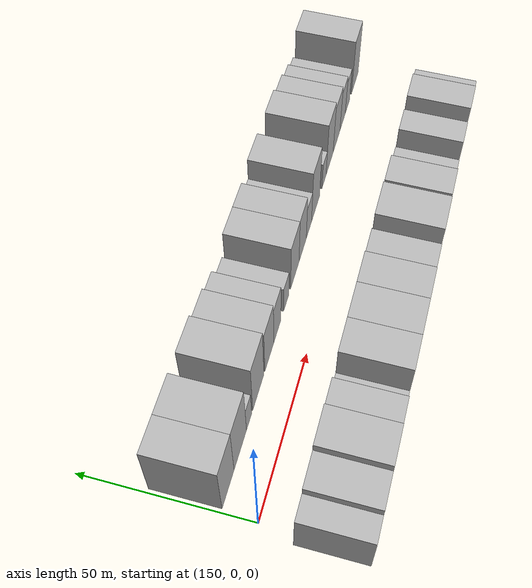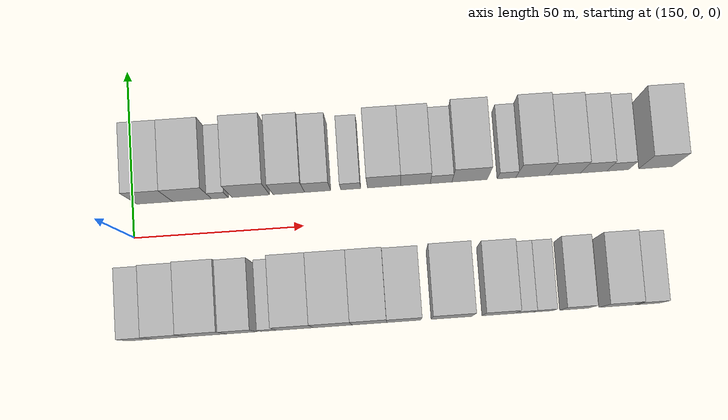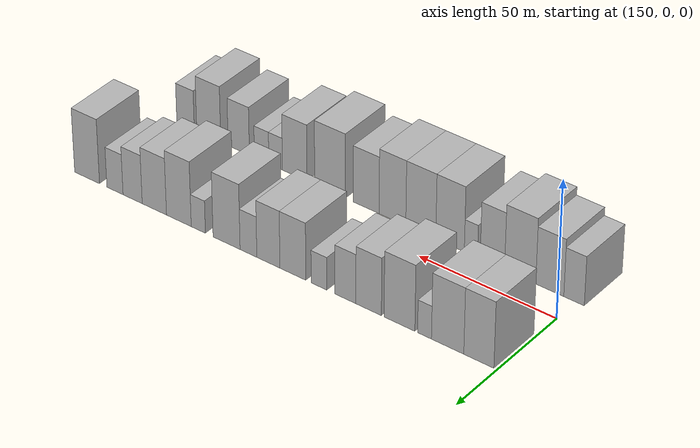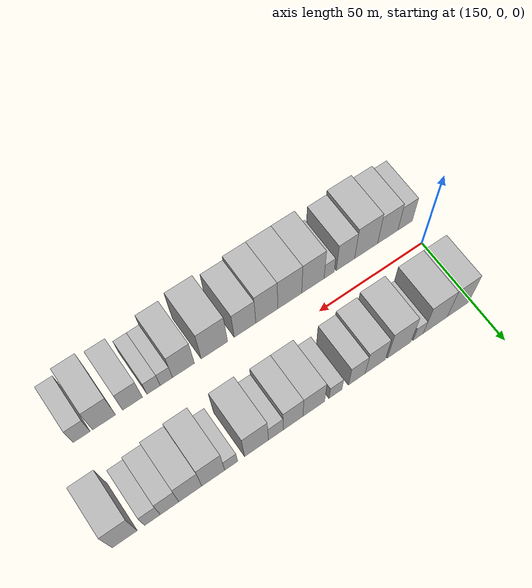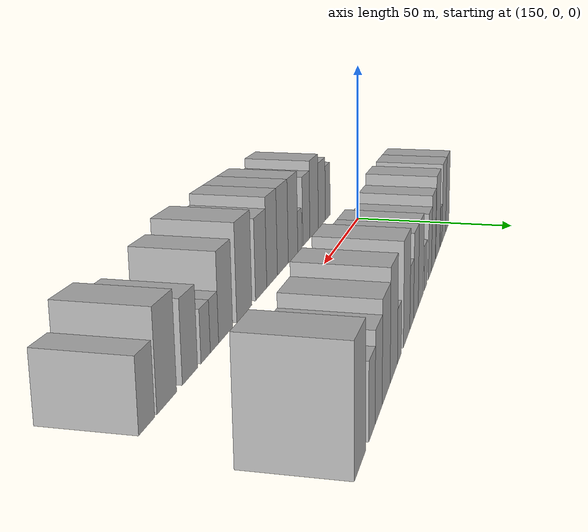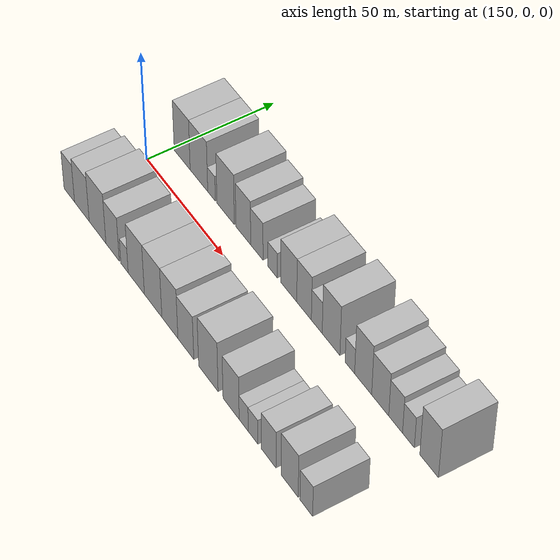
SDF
<sdf version="1.6">
 <world name="default">
  <model name="building_16">
   <static>1</static>
   <pose>156.4968 20.0000 0 0.000000 0.000000 1.570796</pose>
   <link name="link">
    <pose>0 0 12.00 0 0 0</pose>
    <collision name="collision"><geometry><box><size>20.0000 10.6446 24.0000</size></box></geometry></collision>
    <visual name="visual">
     <cast_shadows>0</cast_shadows>
     <geometry><box><size>20.0000 10.6446 24.0000</size></box></geometry>
     <material>
      <script>
       <uri>model://HANNAS_wall/materials/scripts</uri>
       <uri>model://HANNAS_wall/materials/textures</uri>
       <name>vrc/HANNAS_wall</name>
      </script>
     </material>
    </visual>
   </link>
  </model>
  <model name="building_17">
   <static>1</static>
   <pose>167.5923 20.0000 0 0.000000 0.000000 1.570796</pose>
   <link name="link">
    <pose>0 0 12.00 0 0 0</pose>
    <collision name="collision"><geometry><box><size>20.0000 11.5463 24.0000</size></box></geometry></collision>
    <visual name="visual">
     <cast_shadows>0</cast_shadows>
     <geometry><box><size>20.0000 11.5463 24.0000</size></box></geometry>
     <material>
      <script>
       <uri>model://HANNAS_wall/materials/scripts</uri>
       <uri>model://HANNAS_wall/materials/textures</uri>
       <name>vrc/HANNAS_wall</name>
      </script>
     </material>
    </visual>
   </link>
  </model>
  <model name="building_18">
   <static>1</static>
   <pose>175.8534 20.0000 0 0.000000 0.000000 1.570796</pose>
   <link name="link">
    <pose>0 0 6.00 0 0 0</pose>
    <collision name="collision"><geometry><box><size>20.0000 4.9759 12.0000</size></box></geometry></collision>
    <visual name="visual">
     <cast_shadows>0</cast_shadows>
     <geometry><box><size>20.0000 4.9759 12.0000</size></box></geometry>
     <material>
      <script>
       <uri>model://HANNAS_wall/materials/scripts</uri>
       <uri>model://HANNAS_wall/materials/textures</uri>
       <name>vrc/HANNAS_wall</name>
      </script>
     </material>
    </visual>
   </link>
  </model>
  <model name="building_19">
   <static>1</static>
   <pose>184.9343 20.0000 0 0.000000 0.000000 1.570796</pose>
   <link name="link">
    <pose>0 0 12.00 0 0 0</pose>
    <collision name="collision"><geometry><box><size>20.0000 11.1859 24.0000</size></box></geometry></collision>
    <visual name="visual">
     <cast_shadows>0</cast_shadows>
     <geometry><box><size>20.0000 11.1859 24.0000</size></box></geometry>
     <material>
      <script>
       <uri>model://HANNAS_wall/materials/scripts</uri>
       <uri>model://HANNAS_wall/materials/textures</uri>
       <name>vrc/HANNAS_wall</name>
      </script>
     </material>
    </visual>
   </link>
  </model>
  <model name="building_20">
   <static>1</static>
   <pose>196.2174 20.0000 0 0.000000 0.000000 1.570796</pose>
   <link name="link">
    <pose>0 0 10.50 0 0 0</pose>
    <collision name="collision"><geometry><box><size>20.0000 9.3804 21.0000</size></box></geometry></collision>
    <visual name="visual">
     <cast_shadows>0</cast_shadows>
     <geometry><box><size>20.0000 9.3804 21.0000</size></box></geometry>
     <material>
      <script>
       <uri>model://HANNAS_wall/materials/scripts</uri>
       <uri>model://HANNAS_wall/materials/textures</uri>
       <name>vrc/HANNAS_wall</name>
      </script>
     </material>
    </visual>
   </link>
  </model>
  <model name="building_21">
   <static>1</static>
   <pose>204.7751 20.0000 0 0.000000 0.000000 1.570796</pose>
   <link name="link">
    <pose>0 0 9.00 0 0 0</pose>
    <collision name="collision"><geometry><box><size>20.0000 7.7349 18.0000</size></box></geometry></collision>
    <visual name="visual">
     <cast_shadows>0</cast_shadows>
     <geometry><box><size>20.0000 7.7349 18.0000</size></box></geometry>
     <material>
      <script>
       <uri>model://HANNAS_wall/materials/scripts</uri>
       <uri>model://HANNAS_wall/materials/textures</uri>
       <name>vrc/HANNAS_wall</name>
      </script>
     </material>
    </visual>
   </link>
  </model>
  <model name="building_22">
   <static>1</static>
   <pose>214.5912 20.0000 0 0.000000 0.000000 1.570796</pose>
   <link name="link">
    <pose>0 0 6.00 0 0 0</pose>
    <collision name="collision"><geometry><box><size>20.0000 5.8975 12.0000</size></box></geometry></collision>
    <visual name="visual">
     <cast_shadows>0</cast_shadows>
     <geometry><box><size>20.0000 5.8975 12.0000</size></box></geometry>
     <material>
      <script>
       <uri>model://HANNAS_wall/materials/scripts</uri>
       <uri>model://HANNAS_wall/materials/textures</uri>
       <name>vrc/HANNAS_wall</name>
      </script>
     </material>
    </visual>
   </link>
  </model>
  <model name="building_23">
   <static>1</static>
   <pose>224.4419 20.0000 0 0.000000 0.000000 1.570796</pose>
   <link name="link">
    <pose>0 0 10.50 0 0 0</pose>
    <collision name="collision"><geometry><box><size>20.0000 9.8039 21.0000</size></box></geometry></collision>
    <visual name="visual">
     <cast_shadows>0</cast_shadows>
     <geometry><box><size>20.0000 9.8039 21.0000</size></box></geometry>
     <material>
      <script>
       <uri>model://HANNAS_wall/materials/scripts</uri>
       <uri>model://HANNAS_wall/materials/textures</uri>
       <name>vrc/HANNAS_wall</name>
      </script>
     </material>
    </visual>
   </link>
  </model>
  <model name="building_24">
   <static>1</static>
   <pose>233.7490 20.0000 0 0.000000 0.000000 1.570796</pose>
   <link name="link">
    <pose>0 0 10.50 0 0 0</pose>
    <collision name="collision"><geometry><box><size>20.0000 8.8103 21.0000</size></box></geometry></collision>
    <visual name="visual">
     <cast_shadows>0</cast_shadows>
     <geometry><box><size>20.0000 8.8103 21.0000</size></box></geometry>
     <material>
      <script>
       <uri>model://HANNAS_wall/materials/scripts</uri>
       <uri>model://HANNAS_wall/materials/textures</uri>
       <name>vrc/HANNAS_wall</name>
      </script>
     </material>
    </visual>
   </link>
  </model>
  <model name="building_25">
   <static>1</static>
   <pose>241.3754 20.0000 0 0.000000 0.000000 1.570796</pose>
   <link name="link">
    <pose>0 0 7.50 0 0 0</pose>
    <collision name="collision"><geometry><box><size>20.0000 6.4426 15.0000</size></box></geometry></collision>
    <visual name="visual">
     <cast_shadows>0</cast_shadows>
     <geometry><box><size>20.0000 6.4426 15.0000</size></box></geometry>
     <material>
      <script>
       <uri>model://HANNAS_wall/materials/scripts</uri>
       <uri>model://HANNAS_wall/materials/textures</uri>
       <name>vrc/HANNAS_wall</name>
      </script>
     </material>
    </visual>
   </link>
  </model>
  <model name="building_26">
   <static>1</static>
   <pose>249.8242 20.0000 0 0.000000 0.000000 1.570796</pose>
   <link name="link">
    <pose>0 0 12.00 0 0 0</pose>
    <collision name="collision"><geometry><box><size>20.0000 10.4550 24.0000</size></box></geometry></collision>
    <visual name="visual">
     <cast_shadows>0</cast_shadows>
     <geometry><box><size>20.0000 10.4550 24.0000</size></box></geometry>
     <material>
      <script>
       <uri>model://HANNAS_wall/materials/scripts</uri>
       <uri>model://HANNAS_wall/materials/textures</uri>
       <name>vrc/HANNAS_wall</name>
      </script>
     </material>
    </visual>
   </link>
  </model>
  <model name="building_27">
   <static>1</static>
   <pose>260.8251 20.0000 0 0.000000 0.000000 1.570796</pose>
   <link name="link">
    <pose>0 0 6.00 0 0 0</pose>
    <collision name="collision"><geometry><box><size>20.0000 5.5468 12.0000</size></box></geometry></collision>
    <visual name="visual">
     <cast_shadows>0</cast_shadows>
     <geometry><box><size>20.0000 5.5468 12.0000</size></box></geometry>
     <material>
      <script>
       <uri>model://HANNAS_wall/materials/scripts</uri>
       <uri>model://HANNAS_wall/materials/textures</uri>
       <name>vrc/HANNAS_wall</name>
      </script>
     </material>
    </visual>
   </link>
  </model>
  <model name="building_28">
   <static>1</static>
   <pose>268.4774 20.0000 0 0.000000 0.000000 1.570796</pose>
   <link name="link">
    <pose>0 0 12.00 0 0 0</pose>
    <collision name="collision"><geometry><box><size>20.0000 9.7577 24.0000</size></box></geometry></collision>
    <visual name="visual">
     <cast_shadows>0</cast_shadows>
     <geometry><box><size>20.0000 9.7577 24.0000</size></box></geometry>
     <material>
      <script>
       <uri>model://HANNAS_wall/materials/scripts</uri>
       <uri>model://HANNAS_wall/materials/textures</uri>
       <name>vrc/HANNAS_wall</name>
      </script>
     </material>
    </visual>
   </link>
  </model>
  <model name="building_29">
   <static>1</static>
   <pose>278.1939 20.0000 0 0.000000 0.000000 1.570796</pose>
   <link name="link">
    <pose>0 0 10.50 0 0 0</pose>
    <collision name="collision"><geometry><box><size>20.0000 9.6753 21.0000</size></box></geometry></collision>
    <visual name="visual">
     <cast_shadows>0</cast_shadows>
     <geometry><box><size>20.0000 9.6753 21.0000</size></box></geometry>
     <material>
      <script>
       <uri>model://HANNAS_wall/materials/scripts</uri>
       <uri>model://HANNAS_wall/materials/textures</uri>
       <name>vrc/HANNAS_wall</name>
      </script>
     </material>
    </visual>
   </link>
  </model>
  <model name="building_30">
   <static>1</static>
   <pose>286.8814 20.0000 0 0.000000 0.000000 1.570796</pose>
   <link name="link">
    <pose>0 0 9.00 0 0 0</pose>
    <collision name="collision"><geometry><box><size>20.0000 7.6998 18.0000</size></box></geometry></collision>
    <visual name="visual">
     <cast_shadows>0</cast_shadows>
     <geometry><box><size>20.0000 7.6998 18.0000</size></box></geometry>
     <material>
      <script>
       <uri>model://HANNAS_wall/materials/scripts</uri>
       <uri>model://HANNAS_wall/materials/textures</uri>
       <name>vrc/HANNAS_wall</name>
      </script>
     </material>
    </visual>
   </link>
  </model>
  <model name="building_31">
   <static>1</static>
   <pose>293.9942 20.0000 0 0.000000 0.000000 1.570796</pose>
   <link name="link">
    <pose>0 0 7.50 0 0 0</pose>
    <collision name="collision"><geometry><box><size>20.0000 6.5258 15.0000</size></box></geometry></collision>
    <visual name="visual">
     <cast_shadows>0</cast_shadows>
     <geometry><box><size>20.0000 6.5258 15.0000</size></box></geometry>
     <material>
      <script>
       <uri>model://HANNAS_wall/materials/scripts</uri>
       <uri>model://HANNAS_wall/materials/textures</uri>
       <name>vrc/HANNAS_wall</name>
      </script>
     </material>
    </visual>
   </link>
  </model>
  <model name="building_32">
   <static>1</static>
   <pose>305.3265 20.0000 0 0.000000 0.000000 1.570796</pose>
   <link name="link">
    <pose>0 0 12.00 0 0 0</pose>
    <collision name="collision"><geometry><box><size>20.0000 10.1388 24.0000</size></box></geometry></collision>
    <visual name="visual">
     <cast_shadows>0</cast_shadows>
     <geometry><box><size>20.0000 10.1388 24.0000</size></box></geometry>
     <material>
      <script>
       <uri>model://HANNAS_wall/materials/scripts</uri>
       <uri>model://HANNAS_wall/materials/textures</uri>
       <name>vrc/HANNAS_wall</name>
      </script>
     </material>
    </visual>
   </link>
  </model>
  <model name="building_49">
   <static>1</static>
   <pose>150.7303 -20.0000 0 0.000000 0.000000 1.570796</pose>
   <link name="link">
    <pose>0 0 9.00 0 0 0</pose>
    <collision name="collision"><geometry><box><size>20.0000 7.2745 18.0000</size></box></geometry></collision>
    <visual name="visual">
     <cast_shadows>0</cast_shadows>
     <geometry><box><size>20.0000 7.2745 18.0000</size></box></geometry>
     <material>
      <script>
       <uri>model://HANNAS_wall/materials/scripts</uri>
       <uri>model://HANNAS_wall/materials/textures</uri>
       <name>vrc/HANNAS_wall</name>
      </script>
     </material>
    </visual>
   </link>
  </model>
  <model name="building_50">
   <static>1</static>
   <pose>159.4050 -20.0000 0 0.000000 0.000000 1.570796</pose>
   <link name="link">
    <pose>0 0 10.50 0 0 0</pose>
    <collision name="collision"><geometry><box><size>20.0000 10.0749 21.0000</size></box></geometry></collision>
    <visual name="visual">
     <cast_shadows>0</cast_shadows>
     <geometry><box><size>20.0000 10.0749 21.0000</size></box></geometry>
     <material>
      <script>
       <uri>model://HANNAS_wall/materials/scripts</uri>
       <uri>model://HANNAS_wall/materials/textures</uri>
       <name>vrc/HANNAS_wall</name>
      </script>
     </material>
    </visual>
   </link>
  </model>
  <model name="building_51">
   <static>1</static>
   <pose>170.0865 -20.0000 0 0.000000 0.000000 1.570796</pose>
   <link name="link">
    <pose>0 0 12.00 0 0 0</pose>
    <collision name="collision"><geometry><box><size>20.0000 11.2882 24.0000</size></box></geometry></collision>
    <visual name="visual">
     <cast_shadows>0</cast_shadows>
     <geometry><box><size>20.0000 11.2882 24.0000</size></box></geometry>
     <material>
      <script>
       <uri>model://HANNAS_wall/materials/scripts</uri>
       <uri>model://HANNAS_wall/materials/textures</uri>
       <name>vrc/HANNAS_wall</name>
      </script>
     </material>
    </visual>
   </link>
  </model>
  <model name="building_52">
   <static>1</static>
   <pose>180.1830 -20.0000 0 0.000000 0.000000 1.570796</pose>
   <link name="link">
    <pose>0 0 10.50 0 0 0</pose>
    <collision name="collision"><geometry><box><size>20.0000 8.9048 21.0000</size></box></geometry></collision>
    <visual name="visual">
     <cast_shadows>0</cast_shadows>
     <geometry><box><size>20.0000 8.9048 21.0000</size></box></geometry>
     <material>
      <script>
       <uri>model://HANNAS_wall/materials/scripts</uri>
       <uri>model://HANNAS_wall/materials/textures</uri>
       <name>vrc/HANNAS_wall</name>
      </script>
     </material>
    </visual>
   </link>
  </model>
  <model name="building_53">
   <static>1</static>
   <pose>188.0749 -20.0000 0 0.000000 0.000000 1.570796</pose>
   <link name="link">
    <pose>0 0 6.00 0 0 0</pose>
    <collision name="collision"><geometry><box><size>20.0000 4.8788 12.0000</size></box></geometry></collision>
    <visual name="visual">
     <cast_shadows>0</cast_shadows>
     <geometry><box><size>20.0000 4.8788 12.0000</size></box></geometry>
     <material>
      <script>
       <uri>model://HANNAS_wall/materials/scripts</uri>
       <uri>model://HANNAS_wall/materials/textures</uri>
       <name>vrc/HANNAS_wall</name>
      </script>
     </material>
    </visual>
   </link>
  </model>
  <model name="building_54">
   <static>1</static>
   <pose>195.8124 -20.0000 0 0.000000 0.000000 1.570796</pose>
   <link name="link">
    <pose>0 0 12.00 0 0 0</pose>
    <collision name="collision"><geometry><box><size>20.0000 10.5963 24.0000</size></box></geometry></collision>
    <visual name="visual">
     <cast_shadows>0</cast_shadows>
     <geometry><box><size>20.0000 10.5963 24.0000</size></box></geometry>
     <material>
      <script>
       <uri>model://HANNAS_wall/materials/scripts</uri>
       <uri>model://HANNAS_wall/materials/textures</uri>
       <name>vrc/HANNAS_wall</name>
      </script>
     </material>
    </visual>
   </link>
  </model>
  <model name="building_55">
   <static>1</static>
   <pose>206.7335 -20.0000 0 0.000000 0.000000 1.570796</pose>
   <link name="link">
    <pose>0 0 12.00 0 0 0</pose>
    <collision name="collision"><geometry><box><size>20.0000 11.2457 24.0000</size></box></geometry></collision>
    <visual name="visual">
     <cast_shadows>0</cast_shadows>
     <geometry><box><size>20.0000 11.2457 24.0000</size></box></geometry>
     <material>
      <script>
       <uri>model://HANNAS_wall/materials/scripts</uri>
       <uri>model://HANNAS_wall/materials/textures</uri>
       <name>vrc/HANNAS_wall</name>
      </script>
     </material>
    </visual>
   </link>
  </model>
  <model name="building_56">
   <static>1</static>
   <pose>217.4308 -20.0000 0 0.000000 0.000000 1.570796</pose>
   <link name="link">
    <pose>0 0 12.00 0 0 0</pose>
    <collision name="collision"><geometry><box><size>20.0000 10.1491 24.0000</size></box></geometry></collision>
    <visual name="visual">
     <cast_shadows>0</cast_shadows>
     <geometry><box><size>20.0000 10.1491 24.0000</size></box></geometry>
     <material>
      <script>
       <uri>model://HANNAS_wall/materials/scripts</uri>
       <uri>model://HANNAS_wall/materials/textures</uri>
       <name>vrc/HANNAS_wall</name>
      </script>
     </material>
    </visual>
   </link>
  </model>
  <model name="building_57">
   <static>1</static>
   <pose>227.4705 -20.0000 0 0.000000 0.000000 1.570796</pose>
   <link name="link">
    <pose>0 0 10.50 0 0 0</pose>
    <collision name="collision"><geometry><box><size>20.0000 9.9302 21.0000</size></box></geometry></collision>
    <visual name="visual">
     <cast_shadows>0</cast_shadows>
     <geometry><box><size>20.0000 9.9302 21.0000</size></box></geometry>
     <material>
      <script>
       <uri>model://HANNAS_wall/materials/scripts</uri>
       <uri>model://HANNAS_wall/materials/textures</uri>
       <name>vrc/HANNAS_wall</name>
      </script>
     </material>
    </visual>
   </link>
  </model>
  <model name="building_58">
   <static>1</static>
   <pose>241.3833 -20.0000 0 0.000000 0.000000 1.570796</pose>
   <link name="link">
    <pose>0 0 12.00 0 0 0</pose>
    <collision name="collision"><geometry><box><size>20.0000 11.8955 24.0000</size></box></geometry></collision>
    <visual name="visual">
     <cast_shadows>0</cast_shadows>
     <geometry><box><size>20.0000 11.8955 24.0000</size></box></geometry>
     <material>
      <script>
       <uri>model://HANNAS_wall/materials/scripts</uri>
       <uri>model://HANNAS_wall/materials/textures</uri>
       <name>vrc/HANNAS_wall</name>
      </script>
     </material>
    </visual>
   </link>
  </model>
  <model name="building_59">
   <static>1</static>
   <pose>255.1770 -20.0000 0 0.000000 0.000000 1.570796</pose>
   <link name="link">
    <pose>0 0 10.50 0 0 0</pose>
    <collision name="collision"><geometry><box><size>20.0000 9.6918 21.0000</size></box></geometry></collision>
    <visual name="visual">
     <cast_shadows>0</cast_shadows>
     <geometry><box><size>20.0000 9.6918 21.0000</size></box></geometry>
     <material>
      <script>
       <uri>model://HANNAS_wall/materials/scripts</uri>
       <uri>model://HANNAS_wall/materials/textures</uri>
       <name>vrc/HANNAS_wall</name>
      </script>
     </material>
    </visual>
   </link>
  </model>
  <model name="building_60">
   <static>1</static>
   <pose>262.7102 -20.0000 0 0.000000 0.000000 1.570796</pose>
   <link name="link">
    <pose>0 0 6.00 0 0 0</pose>
    <collision name="collision"><geometry><box><size>20.0000 5.3747 12.0000</size></box></geometry></collision>
    <visual name="visual">
     <cast_shadows>0</cast_shadows>
     <geometry><box><size>20.0000 5.3747 12.0000</size></box></geometry>
     <material>
      <script>
       <uri>model://HANNAS_wall/materials/scripts</uri>
       <uri>model://HANNAS_wall/materials/textures</uri>
       <name>vrc/HANNAS_wall</name>
      </script>
     </material>
    </visual>
   </link>
  </model>
  <model name="building_61">
   <static>1</static>
   <pose>268.2704 -20.0000 0 0.000000 0.000000 1.570796</pose>
   <link name="link">
    <pose>0 0 6.00 0 0 0</pose>
    <collision name="collision"><geometry><box><size>20.0000 5.7456 12.0000</size></box></geometry></collision>
    <visual name="visual">
     <cast_shadows>0</cast_shadows>
     <geometry><box><size>20.0000 5.7456 12.0000</size></box></geometry>
     <material>
      <script>
       <uri>model://HANNAS_wall/materials/scripts</uri>
       <uri>model://HANNAS_wall/materials/textures</uri>
       <name>vrc/HANNAS_wall</name>
      </script>
     </material>
    </visual>
   </link>
  </model>
  <model name="building_62">
   <static>1</static>
   <pose>277.4095 -20.0000 0 0.000000 0.000000 1.570796</pose>
   <link name="link">
    <pose>0 0 9.00 0 0 0</pose>
    <collision name="collision"><geometry><box><size>20.0000 8.5326 18.0000</size></box></geometry></collision>
    <visual name="visual">
     <cast_shadows>0</cast_shadows>
     <geometry><box><size>20.0000 8.5326 18.0000</size></box></geometry>
     <material>
      <script>
       <uri>model://HANNAS_wall/materials/scripts</uri>
       <uri>model://HANNAS_wall/materials/textures</uri>
       <name>vrc/HANNAS_wall</name>
      </script>
     </material>
    </visual>
   </link>
  </model>
  <model name="building_63">
   <static>1</static>
   <pose>289.5439 -20.0000 0 0.000000 0.000000 1.570796</pose>
   <link name="link">
    <pose>0 0 10.50 0 0 0</pose>
    <collision name="collision"><geometry><box><size>20.0000 9.7362 21.0000</size></box></geometry></collision>
    <visual name="visual">
     <cast_shadows>0</cast_shadows>
     <geometry><box><size>20.0000 9.7362 21.0000</size></box></geometry>
     <material>
      <script>
       <uri>model://HANNAS_wall/materials/scripts</uri>
       <uri>model://HANNAS_wall/materials/textures</uri>
       <name>vrc/HANNAS_wall</name>
      </script>
     </material>
    </visual>
   </link>
  </model>
  <model name="building_64">
   <static>1</static>
   <pose>298.9877 -20.0000 0 0.000000 0.000000 1.570796</pose>
   <link name="link">
    <pose>0 0 7.50 0 0 0</pose>
    <collision name="collision"><geometry><box><size>20.0000 7.1514 15.0000</size></box></geometry></collision>
    <visual name="visual">
     <cast_shadows>0</cast_shadows>
     <geometry><box><size>20.0000 7.1514 15.0000</size></box></geometry>
     <material>
      <script>
       <uri>model://HANNAS_wall/materials/scripts</uri>
       <uri>model://HANNAS_wall/materials/textures</uri>
       <name>vrc/HANNAS_wall</name>
      </script>
     </material>
    </visual>
   </link>
  </model>
 </world>
</sdf>
